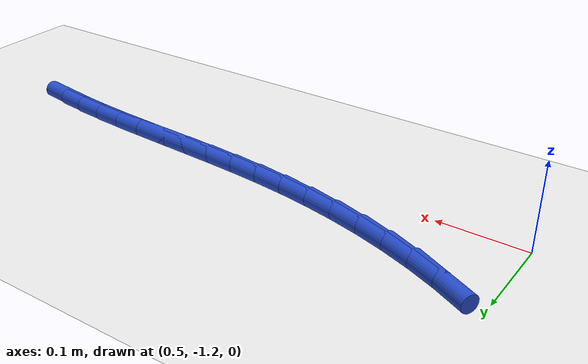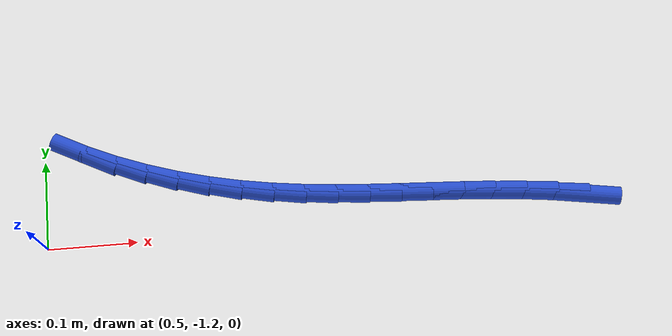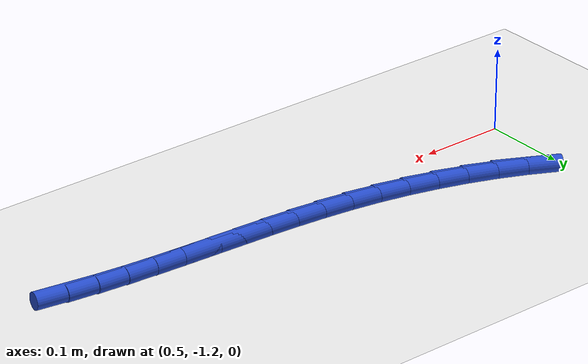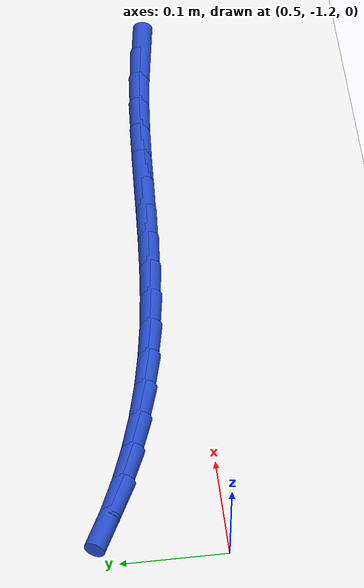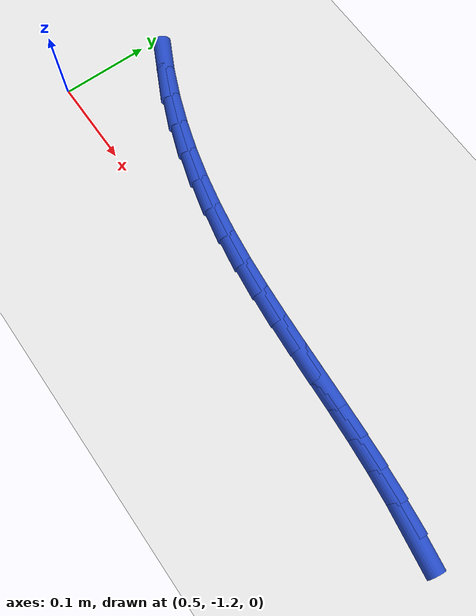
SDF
<sdf version="1.6">
 <world name="default">
  <model name="ground_plane">
   <static>1</static>
   <link name="link">
    <collision name="collision">
     <geometry><plane><normal>0 0 1</normal><size>100 100</size></plane></geometry>
     <surface><friction><ode><mu>100</mu><mu2>50</mu2></ode></friction></surface>
    </collision>
    <visual name="visual">
     <cast_shadows>0</cast_shadows>
     <geometry><plane><normal>0 0 1</normal><size>100 100</size></plane></geometry>
     <material>
      <script><uri>file://media/materials/scripts/gazebo.material</uri><name>Gazebo/WhiteGlow</name></script>
     </material>
    </visual>
   </link>
  </model>
  <model name="line">
   <link name="link_158">
    <pose>1.1013856712577994 -1.1870995946871015 0.01 0 1.57 -0.15332611584486536</pose>
    <collision name="collision">
     <geometry><cylinder><radius>0.01</radius><length>0.08</length></cylinder></geometry>
    </collision>
    <visual name="visual">
     <material>
      <script><name>Gazebo/Blue</name><uri>file://media/materials/scripts/gazebo.material</uri></script>
     </material>
     <geometry><cylinder><radius>0.01</radius><length>0.08</length></cylinder></geometry>
    </visual>
   </link>
   <link name="link_159">
    <pose>1.0668592657123295 -1.1817639173893575 0.01 0 1.57 -0.11587147739978623</pose>
    <collision name="collision">
     <geometry><cylinder><radius>0.01</radius><length>0.08</length></cylinder></geometry>
    </collision>
    <visual name="visual">
     <material>
      <script><name>Gazebo/Blue</name><uri>file://media/materials/scripts/gazebo.material</uri></script>
     </material>
     <geometry><cylinder><radius>0.01</radius><length>0.08</length></cylinder></geometry>
    </visual>
   </link>
   <link name="link_160">
    <pose>1.0322403780984961 -1.1777345264385533 0.01 0 1.57 -0.08689632869541253</pose>
    <collision name="collision">
     <geometry><cylinder><radius>0.01</radius><length>0.08</length></cylinder></geometry>
    </collision>
    <visual name="visual">
     <material>
      <script><name>Gazebo/Blue</name><uri>file://media/materials/scripts/gazebo.material</uri></script>
     </material>
     <geometry><cylinder><radius>0.01</radius><length>0.08</length></cylinder></geometry>
    </visual>
   </link>
   <link name="link_161">
    <pose>0.9975354836746884 -1.174711184969686 0.01 0 1.57 -0.06654293896384204</pose>
    <collision name="collision">
     <geometry><cylinder><radius>0.01</radius><length>0.08</length></cylinder></geometry>
    </collision>
    <visual name="visual">
     <material>
      <script><name>Gazebo/Blue</name><uri>file://media/materials/scripts/gazebo.material</uri></script>
     </material>
     <geometry><cylinder><radius>0.01</radius><length>0.08</length></cylinder></geometry>
    </visual>
   </link>
   <link name="link_162">
    <pose>0.9627510871220591 -1.17239310652758 0.01 0 1.57 -0.05484296788323843</pose>
    <collision name="collision">
     <geometry><cylinder><radius>0.01</radius><length>0.08</length></cylinder></geometry>
    </collision>
    <visual name="visual">
     <material>
      <script><name>Gazebo/Blue</name><uri>file://media/materials/scripts/gazebo.material</uri></script>
     </material>
     <geometry><cylinder><radius>0.01</radius><length>0.08</length></cylinder></geometry>
    </visual>
   </link>
   <link name="link_163">
    <pose>0.9278936931217603 -1.170479504657057 0.01 0 1.57 -0.05177814352717481</pose>
    <collision name="collision">
     <geometry><cylinder><radius>0.01</radius><length>0.08</length></cylinder></geometry>
    </collision>
    <visual name="visual">
     <material>
      <script><name>Gazebo/Blue</name><uri>file://media/materials/scripts/gazebo.material</uri></script>
     </material>
     <geometry><cylinder><radius>0.01</radius><length>0.08</length></cylinder></geometry>
    </visual>
   </link>
   <link name="link_164">
    <pose>0.8929698063549442 -1.168669592902942 0.01 0 1.57 -0.05730670419724</pose>
    <collision name="collision">
     <geometry><cylinder><radius>0.01</radius><length>0.08</length></cylinder></geometry>
    </collision>
    <visual name="visual">
     <material>
      <script><name>Gazebo/Blue</name><uri>file://media/materials/scripts/gazebo.material</uri></script>
     </material>
     <geometry><cylinder><radius>0.01</radius><length>0.08</length></cylinder></geometry>
    </visual>
   </link>
   <link name="link_165">
    <pose>0.8579859315027648 -1.1666625848100571 0.01 0 1.57 -0.07137057309782718</pose>
    <collision name="collision">
     <geometry><cylinder><radius>0.01</radius><length>0.08</length></cylinder></geometry>
    </collision>
    <visual name="visual">
     <material>
      <script><name>Gazebo/Blue</name><uri>file://media/materials/scripts/gazebo.material</uri></script>
     </material>
     <geometry><cylinder><radius>0.01</radius><length>0.08</length></cylinder></geometry>
    </visual>
   </link>
   <link name="link_166">
    <pose>0.8229485732463736 -1.1641576939232254 0.01 0 1.57 -0.09388372936226491</pose>
    <collision name="collision">
     <geometry><cylinder><radius>0.01</radius><length>0.08</length></cylinder></geometry>
    </collision>
    <visual name="visual">
     <material>
      <script><name>Gazebo/Blue</name><uri>file://media/materials/scripts/gazebo.material</uri></script>
     </material>
     <geometry><cylinder><radius>0.01</radius><length>0.08</length></cylinder></geometry>
    </visual>
   </link>
   <link name="link_167">
    <pose>0.7878642362669238 -1.1608541337872713 0.01 0 1.57 -0.12470298043777271</pose>
    <collision name="collision">
     <geometry><cylinder><radius>0.01</radius><length>0.08</length></cylinder></geometry>
    </collision>
    <visual name="visual">
     <material>
      <script><name>Gazebo/Blue</name><uri>file://media/materials/scripts/gazebo.material</uri></script>
     </material>
     <geometry><cylinder><radius>0.01</radius><length>0.08</length></cylinder></geometry>
    </visual>
   </link>
   <link name="link_168">
    <pose>0.7527394252455669 -1.156451117947017 0.01 0 1.57 -0.1635688217008187</pose>
    <collision name="collision">
     <geometry><cylinder><radius>0.01</radius><length>0.08</length></cylinder></geometry>
    </collision>
    <visual name="visual">
     <material>
      <script><name>Gazebo/Blue</name><uri>file://media/materials/scripts/gazebo.material</uri></script>
     </material>
     <geometry><cylinder><radius>0.01</radius><length>0.08</length></cylinder></geometry>
    </visual>
   </link>
   <link name="link_169">
    <pose>0.7175811434578158 -1.1506484772647516 0.01 0 1.57 -0.2081996167052567</pose>
    <collision name="collision">
     <geometry><cylinder><radius>0.01</radius><length>0.08</length></cylinder></geometry>
    </collision>
    <visual name="visual">
     <material>
      <script><name>Gazebo/Blue</name><uri>file://media/materials/scripts/gazebo.material</uri></script>
     </material>
     <geometry><cylinder><radius>0.01</radius><length>0.08</length></cylinder></geometry>
    </visual>
   </link>
   <link name="link_170">
    <pose>0.6824638523066803 -1.1432295635642542 0.01 0 1.57 -0.25488587374012156</pose>
    <collision name="collision">
     <geometry><cylinder><radius>0.01</radius><length>0.08</length></cylinder></geometry>
    </collision>
    <visual name="visual">
     <material>
      <script><name>Gazebo/Blue</name><uri>file://media/materials/scripts/gazebo.material</uri></script>
     </material>
     <geometry><cylinder><radius>0.01</radius><length>0.08</length></cylinder></geometry>
    </visual>
   </link>
   <link name="link_171">
    <pose>0.6475970474144936 -1.1341449166457556 0.01 0 1.57 -0.3037539018395933</pose>
    <collision name="collision">
     <geometry><cylinder><radius>0.01</radius><length>0.08</length></cylinder></geometry>
    </collision>
    <visual name="visual">
     <material>
      <script><name>Gazebo/Blue</name><uri>file://media/materials/scripts/gazebo.material</uri></script>
     </material>
     <geometry><cylinder><radius>0.01</radius><length>0.08</length></cylinder></geometry>
    </visual>
   </link>
   <link name="link_172">
    <pose>0.6132063152142451 -1.1233649985935332 0.01 0 1.57 -0.35541787282860454</pose>
    <collision name="collision">
     <geometry><cylinder><radius>0.01</radius><length>0.08</length></cylinder></geometry>
    </collision>
    <visual name="visual">
     <material>
      <script><name>Gazebo/Blue</name><uri>file://media/materials/scripts/gazebo.material</uri></script>
     </material>
     <geometry><cylinder><radius>0.01</radius><length>0.08</length></cylinder></geometry>
    </visual>
   </link>
   <link name="link_173">
    <pose>0.5795172421389239 -1.110860271491864 0.01 0 1.57 -0.41050723507807246</pose>
    <collision name="collision">
     <geometry><cylinder><radius>0.01</radius><length>0.08</length></cylinder></geometry>
    </collision>
    <visual name="visual">
     <material>
      <script><name>Gazebo/Blue</name><uri>file://media/materials/scripts/gazebo.material</uri></script>
     </material>
     <geometry><cylinder><radius>0.01</radius><length>0.08</length></cylinder></geometry>
    </visual>
   </link>
   <link name="link_174">
    <pose>0.5467554146215201 -1.096601197425027 0.01 0 1.57 -0.46966465287060705</pose>
    <collision name="collision">
     <geometry><cylinder><radius>0.01</radius><length>0.08</length></cylinder></geometry>
    </collision>
    <visual name="visual">
     <material>
      <script><name>Gazebo/Blue</name><uri>file://media/materials/scripts/gazebo.material</uri></script>
     </material>
     <geometry><cylinder><radius>0.01</radius><length>0.08</length></cylinder></geometry>
    </visual>
   </link>
  </model>
 </world>
</sdf>
